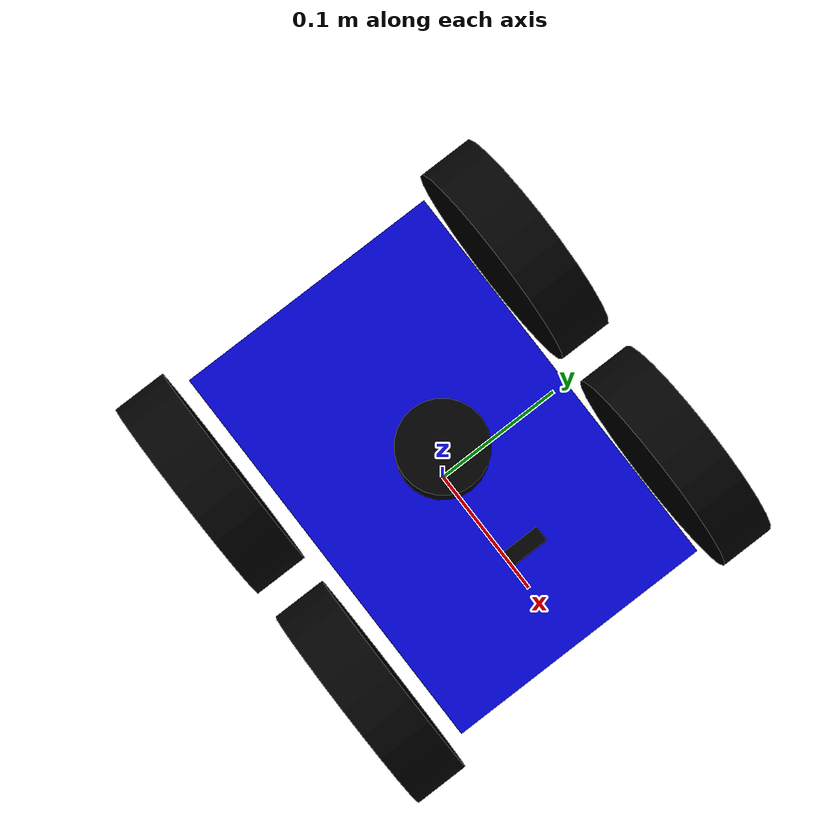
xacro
<?xml version="1.0"?>
<robot name="armbot" xmlns:xacro="http://wiki.ros.org/xacro">
  <xacro:include filename="gazebo_head.xacro"/>
  <xacro:include filename="gazebo_car.xacro"/>
  <xacro:include filename="gazebo_laser.xacro"/>
  <xacro:include filename="gazebo_camera.xacro"/>
  <xacro:include filename="gazebo_sensors.xacro"/>

  <!-- Keep the existing navigation API while using the VM project's four-wheel skid drive. -->
  <gazebo>
    <plugin name="mobile_base_controller" filename="libgazebo_ros_skid_steer_drive.so">
      <updateRate>100.0</updateRate>
      <robotNamespace>/</robotNamespace>
      <leftFrontJoint>front_left_wheel_joint</leftFrontJoint>
      <rightFrontJoint>front_right_wheel_joint</rightFrontJoint>
      <leftRearJoint>back_left_wheel_joint</leftRearJoint>
      <rightRearJoint>back_right_wheel_joint</rightRearJoint>
      <wheelSeparation>${wheel_y * 2}</wheelSeparation>
      <wheelDiameter>${wheel_radius * 2}</wheelDiameter>
      <robotBaseFrame>base_footprint</robotBaseFrame>
      <torque>20</torque>
      <commandTopic>/cmd_vel</commandTopic>
      <odometryTopic>/odom</odometryTopic>
      <odometryFrame>odom</odometryFrame>
      <broadcastTF>true</broadcastTF>
      <odometryRate>30.0</odometryRate>
      <covariance_x>0.001</covariance_x>
      <covariance_y>0.001</covariance_y>
      <covariance_yaw>0.01</covariance_yaw>
    </plugin>
  </gazebo>
</robot>

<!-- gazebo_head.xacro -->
<!-- 机器人头部组件定义文件  -->

<!-- 此文件定义了机器人的头部组件，包括惯性矩阵计算宏            -->
<robot name="base" xmlns:xacro="http://wiki.ros.org/xacro">
    <!-- ============ 惯性矩阵计算宏 ============================== -->

    <!-- 球体惯性矩阵计算宏 -->
    <xacro:macro name="sphere_inertial_matrix" params="m r">
        <inertial>
            <mass value="${m}" />                    <!-- 质量 -->
            <!-- XX惯性矩
                YY惯性矩
                ZZ惯性矩 -->
            <inertia ixx="${2*m*r*r/5}" ixy="0" ixz="0"
                iyy="${2*m*r*r/5}" iyz="0"
                izz="${2*m*r*r/5}" />
        </inertial>
    </xacro:macro>

    <!-- 圆柱体惯性矩阵计算宏 -->
    <xacro:macro name="cylinder_inertial_matrix" params="m r h">
        <inertial>
            <mass value="${m}" />                                    <!-- 质量 -->
            <!-- XX惯性矩
                YY惯性矩
                ZZ惯性矩 -->
            <inertia ixx="${m*(3*r*r+h*h)/12}" ixy = "0" ixz = "0"
                iyy="${m*(3*r*r+h*h)/12}" iyz = "0"
                izz="${m*r*r/2}" />
        </inertial>
    </xacro:macro>

    <!-- 长方体惯性矩阵计算宏 -->
    <xacro:macro name="Box_inertial_matrix" params="m l w h">
       <inertial>
               <mass value="${m}" />                                    <!-- 质量 -->
               <!-- XX惯性矩
                    YY惯性矩
                    ZZ惯性矩 -->
               <inertia ixx="${m*(h*h + l*l)/12}" ixy = "0" ixz = "0"
                   iyy="${m*(w*w + l*l)/12}" iyz= "0"
                   izz="${m*(w*w + h*h)/12}" />
       </inertial>
   </xacro:macro>
</robot>

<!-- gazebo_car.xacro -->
<robot name="armbot" xmlns:xacro="http://wiki.ros.org/xacro">
  <!-- Geometry and proportions match the armbot used by the recovered VM project. -->
  <xacro:property name="PI" value="3.141592653589793"/>
  <xacro:property name="base_link_length" value="0.30"/>
  <xacro:property name="base_link_width" value="0.20"/>
  <xacro:property name="base_link_height" value="0.08"/>
  <xacro:property name="base_link_m" value="0.50"/>
  <xacro:property name="wheel_radius" value="0.08"/>
  <xacro:property name="wheel_length" value="0.04"/>
  <xacro:property name="wheel_m" value="0.10"/>
  <xacro:property name="wheel_x" value="${base_link_length * 0.30}"/>
  <xacro:property name="wheel_y" value="${(base_link_width / 2 + wheel_length / 2) * 1.10}"/>

  <material name="armbot_blue">
    <color rgba="0 0 0.8 1"/>
  </material>
  <material name="armbot_black">
    <color rgba="0 0 0 1"/>
  </material>
  <material name="black">
    <color rgba="0 0 0 1"/>
  </material>

  <link name="base_footprint"/>

  <link name="base_link">
    <visual>
      <geometry>
        <box size="${base_link_length} ${base_link_width} ${base_link_height}"/>
      </geometry>
      <material name="armbot_blue"/>
    </visual>
    <collision>
      <geometry>
        <box size="${base_link_length} ${base_link_width} ${base_link_height}"/>
      </geometry>
    </collision>
    <xacro:Box_inertial_matrix m="${base_link_m}" l="${base_link_length}" w="${base_link_width}" h="${base_link_height}"/>
  </link>

  <joint name="base_link2base_footprint" type="fixed">
    <parent link="base_footprint"/>
    <child link="base_link"/>
    <origin xyz="0 0 ${wheel_radius}"/>
  </joint>

  <gazebo reference="base_link">
    <material>Gazebo/Blue</material>
  </gazebo>

  <xacro:macro name="armbot_wheel" params="name x_pos y_pos">
    <link name="${name}_wheel">
      <visual>
        <origin xyz="0 0 0" rpy="${PI / 2} 0 0"/>
        <geometry>
          <cylinder radius="${wheel_radius}" length="${wheel_length}"/>
        </geometry>
        <material name="armbot_black"/>
      </visual>
      <collision>
        <origin xyz="0 0 0" rpy="${PI / 2} 0 0"/>
        <geometry>
          <cylinder radius="${wheel_radius}" length="${wheel_length}"/>
        </geometry>
      </collision>
      <xacro:cylinder_inertial_matrix m="${wheel_m}" r="${wheel_radius}" h="${wheel_length}"/>
    </link>
    <joint name="${name}_wheel_joint" type="continuous">
      <parent link="base_link"/>
      <child link="${name}_wheel"/>
      <origin xyz="${x_pos} ${y_pos} 0" rpy="0 0 0"/>
      <axis xyz="0 1 0"/>
      <dynamics damping="0.0" friction="0.0"/>
    </joint>
    <gazebo reference="${name}_wheel">
      <material>Gazebo/DarkGrey</material>
      <mu1>1.0</mu1>
      <mu2>1.0</mu2>
      <kp>1000000.0</kp>
      <kd>1.0</kd>
    </gazebo>
  </xacro:macro>

  <xacro:armbot_wheel name="front_left" x_pos="${wheel_x}" y_pos="${wheel_y}"/>
  <xacro:armbot_wheel name="front_right" x_pos="${wheel_x}" y_pos="${-wheel_y}"/>
  <xacro:armbot_wheel name="back_left" x_pos="${-wheel_x}" y_pos="${wheel_y}"/>
  <xacro:armbot_wheel name="back_right" x_pos="${-wheel_x}" y_pos="${-wheel_y}"/>
</robot>

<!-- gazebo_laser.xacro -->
<!-- 激光雷达组件定义文件  -->

<!-- 此文件定义了机器人的激光雷达组件，包括支撑杆和激光传感器    -->

<robot name="my_laser" xmlns:xacro="http://wiki.ros.org/xacro">
    <!-- ============ 激光雷达支撑杆参数 ========================== -->

    <!-- 支撑杆尺寸参数 -->
    <xacro:property name="support_length" value="0.12" />     <!-- 支撑杆长度 -->
    <xacro:property name="support_radius" value="0.01" />    <!-- 支撑杆半径 -->

    <!-- 支撑杆安装位置参数 -->
    <xacro:property name="support_x" value="0.0" />           <!-- X方向偏移，控制支撑杆前后位置 -->
    <xacro:property name="support_y" value="0.0" />           <!-- Y方向偏移，控制支撑杆左右位置 -->
    <!-- 支撑杆高度计算，确保与底座正确连接 -->
    <xacro:property name="support_z" value="${base_link_height / 2 + support_length / 2}" />

    <!-- 支撑杆物理属性参数 -->
    <xacro:property name="support_m" value="0.02" />          <!-- 支撑杆质量，影响动力学特性 -->

    <link name="support">
        <visual>
            <geometry>
                <cylinder radius="${support_radius}" length="${support_length}" />
            </geometry>
            <origin xyz="0.0 0.0 0.0" rpy="0.0 0.0 0.0" />
            <material name="red">
                <color rgba="0.8 0.2 0.0 0.8" />
            </material>
        </visual>

        <collision>
            <geometry>
                <cylinder radius="${support_radius}" length="${support_length}" />
            </geometry>
            <origin xyz="0.0 0.0 0.0" rpy="0.0 0.0 0.0" />
        </collision>

        <xacro:cylinder_inertial_matrix m="${support_m}" r="${support_radius}" h="${support_length}" />

    </link>

    <joint name="support2base_link" type="fixed">
        <parent link="base_link" />
        <child link="support" />
        <origin xyz="${support_x} ${support_y} ${support_z}" />
    </joint>

    <gazebo reference="support">
        <material>Gazebo/White</material>
    </gazebo>

    <!-- ============ 激光雷达传感器参数 ========================== -->
    <xacro:property name="laser_length" value="0.05" />
    <xacro:property name="laser_radius" value="0.03" />
    <xacro:property name="laser_x" value="0.0" />
    <xacro:property name="laser_y" value="0.0" />
    <xacro:property name="laser_z" value="${support_length / 2 + laser_length / 2}" />

    <xacro:property name="laser_m" value="0.1" />

    <link name="laser">
        <visual>
            <geometry>
                <cylinder radius="${laser_radius}" length="${laser_length}" />
            </geometry>
            <origin xyz="0.0 0.0 0.0" rpy="0.0 0.0 0.0" />
            <material name="black" />
        </visual>
        <collision>
            <geometry>
                <cylinder radius="${laser_radius}" length="${laser_length}" />
            </geometry>
            <origin xyz="0.0 0.0 0.0" rpy="0.0 0.0 0.0" />
        </collision>
        <xacro:cylinder_inertial_matrix m="${laser_m}" r="${laser_radius}" h="${laser_length}" />
    </link>

    <joint name="laser2support" type="fixed">
        <parent link="support" />
        <child link="laser" />
        <origin xyz="${laser_x} ${laser_y} ${laser_z}" />
    </joint>

    <gazebo reference="laser">
        <material>Gazebo/Black</material>

        <!-- 添加激光雷达传感器插件 -->
        <sensor type="ray" name="laser_sensor">
            <pose>0 0 0 0 0 0</pose>

            <!-- 关键设置：将此项设为 false 即可隐藏激光束 -->
            <visualize>false</visualize>

            <update_rate>40</update_rate>
            <ray>
                <scan>
                    <horizontal>
                        <samples>720</samples>
                        <resolution>1</resolution>
                        <min_angle>-2.35619</min_angle> <!-- 扫描范围 -135度 -->
                        <max_angle>2.35619</max_angle> <!-- 扫描范围 +135度 -->
                    </horizontal>
                </scan>
                <range>
                    <min>0.10</min>
                    <max>12.0</max>
                    <resolution>0.01</resolution>
                </range>
                <noise>
                    <type>gaussian</type>
                    <mean>0.0</mean>
                    <stddev>0.01</stddev>
                </noise>
            </ray>

            <!-- ROS插件，用于发布 /scan 话题 -->
            <plugin name="gazebo_ros_laser_controller" filename="libgazebo_ros_laser.so">
                <topicName>/scan</topicName>
                <frameName>laser</frameName>
            </plugin>
        </sensor>
    </gazebo>
</robot>

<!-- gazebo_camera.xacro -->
<!-- 摄像头组件定义文件 -->

<!-- 此文件定义了机器人的摄像头组件，包括视觉传感器和Gazebo插件  -->
<robot name="my_camera" xmlns:xacro="http://wiki.ros.org/xacro">
    <!-- ============ 摄像头尺寸参数 ============================== -->

    <!-- 摄像头物理尺寸 -->
    <xacro:property name="camera_length" value="0.01" />     <!-- 摄像头长度 -->
    <xacro:property name="camera_width" value="0.025" />     <!-- 摄像头宽度 -->
    <xacro:property name="camera_height" value="0.025" />   <!-- 摄像头高度 -->

    <!-- 摄像头安装位置参数 -->
    <xacro:property name="camera_x" value="0.08" />           <!-- X方向偏移，控制摄像头前后位置 -->
    <xacro:property name="camera_y" value="0.0" />            <!-- Y方向偏移，控制摄像头左右位置 -->

    <!-- 摄像头高度计算，确保合适的视野高度 -->
    <xacro:property name="camera_z" value="${base_link_height / 2 + camera_height / 2 + 0.2}" />

    <!-- 摄像头物理属性参数 -->
    <xacro:property name="camera_m" value="0.01" />           <!-- 摄像头质量，影响动力学特性 -->

    <link name="camera">
        <visual>
            <geometry>
                <box size="${camera_length} ${camera_width} ${camera_height}" />
            </geometry>
            <origin xyz="0.0 0.0 0.0" rpy="0.0 0.0 0.0" />
            <material name="black" />
        </visual>
        <collision>
            <geometry>
                <box size="${camera_length} ${camera_width} ${camera_height}" />
            </geometry>
            <origin xyz="0.0 0.0 0.0" rpy="0.0 0.0 0.0" />
        </collision>
        <xacro:Box_inertial_matrix m="${camera_m}" l="${camera_length}" w="${camera_width}" h="${camera_height}" />
    </link>

    <joint name="camera2base_link" type="fixed">
        <parent link="base_link" />
        <child link="camera" />
        <origin xyz="${camera_x} ${camera_y} ${camera_z}" />
    </joint>
    <gazebo reference="camera">
        <material>Gazebo/Blue</material>
    </gazebo>
</robot>
